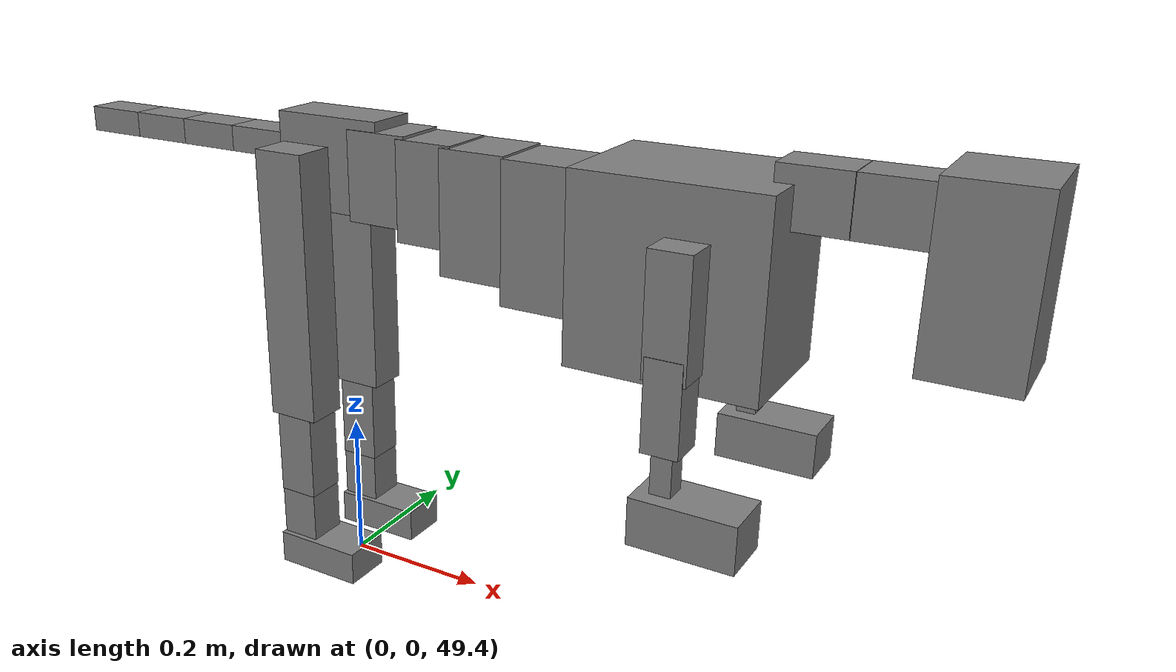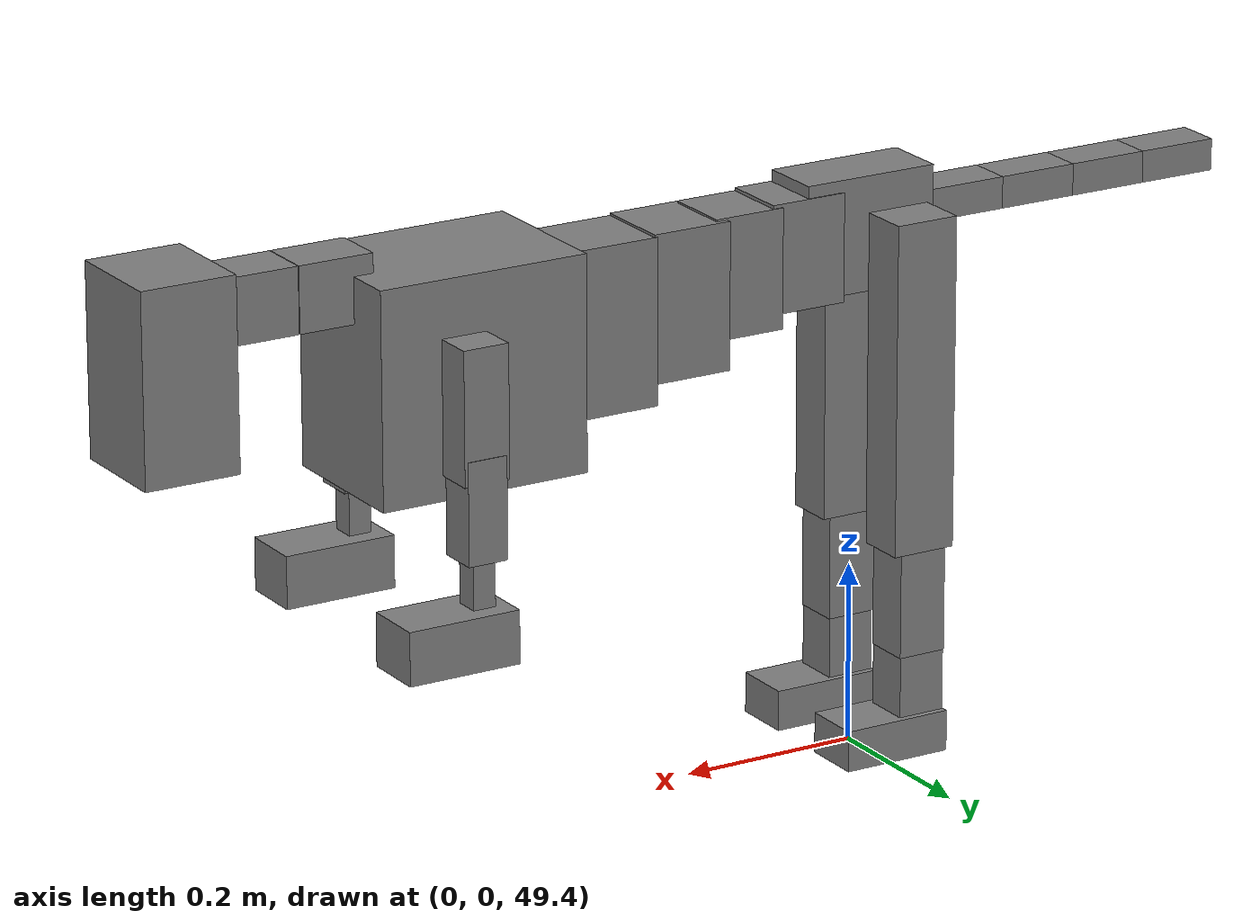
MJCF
<mujoco model="dog">

    <default>
        <joint armature="0.02" stiffness="1" damping="0.2" limited="true"/>
        <geom condim="3" friction="1 0.05 0.05" margin="0.01"/>
        <motor ctrllimited="true" ctrlrange="-1.0 1.0" forcelimited="true" gear="50"/>
    </default>

    <compiler inertiafromgeom="true" angle="radian"/>

    <option timestep="0.016" iterations="50" tolerance="1e-10" solver="Newton" jacobian="dense" cone="pyramidal"/>

    <size nconmax="20000" njmax="60000" nstack="5000000"/>
    <visual>
        <map force="0.1" zfar="30"/>
        <rgba haze="0.15 0.25 0.35 1"/>
        <quality shadowsize="2048"/>
        <global offwidth="800" offheight="800"/>
    </visual>

    <asset>
        <texture type="skybox" builtin="gradient" rgb1="0.3 0.5 0.7" rgb2="0 0 0" width="512" height="512"/>
        <texture name="texplane" type="2d" builtin="checker" rgb1=".2 .3 .4" rgb2=".1 0.15 0.2" width="512" height="512"
                 mark="cross" markrgb=".8 .8 .8"/>
        <texture name="texgeom" type="cube" builtin="flat" mark="cross" width="127" height="1278" rgb1="0.8 0.6 0.4"
                 rgb2="0.8 0.6 0.4" markrgb="1 1 1" random="0.01"/>

        <material name="matplane" reflectance="0.3" texture="texplane" texrepeat="1 1" texuniform="true"/>
        <material name="matgeom" texture="texgeom" texuniform="true" rgba="0.8 0.6 .4 1"/>
    </asset>

    <worldbody>
        <geom name="floor" pos="0 0 0" size="0 0 .25" type="plane" material="matplane" condim="3"/>

        <light directional="false" diffuse=".2 .2 .2" specular="0 0 0" pos="0 0 5" dir="0 0 -1" castshadow="false"/>
        <light mode="targetbodycom" target="torso" directional="false" diffuse=".8 .8 .8" specular="0.3 0.3 0.3"
               pos="0 0 4.0" dir="0 0 -1"/>

        <body name="root" pos="0 0 50">
            <freejoint name="root_1"/>
            <geom type="box" pos="0 0 -0.02" size="0.0774  0.0358  0.063" density="2030"/>

            <body name="spine1" pos="0.054 0 0">
                <joint name="spine1_y" axis="0 1 0" range="0 0.7" limited="true"/>
                <geom type="box" pos="0.02375 0 -0.03" size="0.04375  0.0375  0.05985" density="2030"/>

                <body name="spine2" pos="0.0612 0 0">
                    <joint name="spine2_y" axis="0 1 0" range="-0.15 0.15" limited="true"/>
                    <geom type="box" pos="0.03555  0  -0.04" size="0.04055  0.039  0.06615" density="2030"/>

                    <body name="spine3" pos="0.0730 0 0">
                        <joint name="spine3_y" axis="0 1 0" range="-0.15 0.15" limited="true"/>
                        <geom type="box" pos="0.03555  0  -0.057" size="0.04555  0.0445  0.081" density="2030"/>

                        <body name="spine4" pos="0.0780 0 0">
                            <joint name="spine4_y" axis="0 1 0" range="-0.15 0.15" limited="true"/>
                            <geom type="box" pos="0.05265  0  -0.07" size="0.05265  0.045  0.09135" density="2030"/>

                            <body name="torso" pos="0.1082 0 0">
                                <joint name="torso_y" axis="0 1 0" range="-0.15 0.15" limited="true"/>
                                <geom type="box" pos="0.11925  0  -0.085" size="0.11925  0.085  0.11745"
                                      density="2030"/>

                                <body name="neck1" pos="0.2160  0   0.0180">
                                    <joint name="neck1_y" axis="0 1 0" range="-1.2  -1" limited="true"/>
                                    <geom type="box" pos="0.0423  0  0" size="0.0423  0.03  0.036" density="2325"/>

                                    <body name="neck2" pos="0.0853  0  0">
                                        <joint name="neck2_y" axis="0 1 0" range="0.1  0" limited="true"/>
                                        <geom type="box" pos="0.0423  0  0" size="0.0423  0.03  0.036" density="2325"/>

                                        <body name="head" pos="0.0853  0  0">
                                            <joint name="head_y" axis="0 1 0" range="-0.3  -0.2" limited="true"/>
                                            <geom type="box" pos="0.0531  0  -0.055" size="0.0531  0.06  0.1044"
                                                  density="4030"/>

                                        </body>
                                    </body>
                                </body>

                                <body name="front_shoulder" pos="0.156  0   -0.0480">
                                    <joint name="front_shoulder_y" axis="0 1 0" range="-1 1.5" limited="true"/>
                                    <geom type="box" pos="0 0.13 -0.0458" size="0.0258  0.0221  0.0724" density="1158"/>
                                    <geom type="box" pos="0 -0.13 -0.0458" size="0.0258  0.0221  0.0724"
                                          density="1158"/>

                                    <body name="front_elbow" pos="0  0  -0.0915">
                                        <joint name="front_elbow_y" axis="0 1 0" range="-2 0" limited="true"/>
                                        <geom type="box" pos="0 0.13 -0.0558" size="0.0224  0.0229  0.0558"
                                              density="1081"/>
                                        <geom type="box" pos="0 -0.13 -0.0558" size="0.0224  0.0229  0.0558"
                                              density="1081"/>

                                        <body name="front_wrist" pos="0  0  -0.1116">
                                            <joint name="front_wrist_y" axis="0 1 0" range="-0.2 0" limited="true"/>
                                            <geom type="box" pos="0 0.13 -0.0330" size="0.0127  0.0141  0.0461"
                                                  density="1664"/>
                                            <geom type="box" pos="0 -0.13 -0.0330" size="0.0127  0.0141  0.0461"
                                                  density="1664"/>

                                            <body name="front_finger_end" pos="0  0  -0.0660">
                                                <joint name="front_finger_y" axis="0 1 0" range="-0.4 1"
                                                       limited="true"/>
                                                <geom type="box" pos="0.0347  0.13  -0.0142"
                                                      size="0.0636  0.0347  0.0292" density="1515"/>
                                                <geom type="box" pos="0.0347  -0.13  -0.0142"
                                                      size="0.0636  0.0347  0.0292" density="1515"/>

                                            </body>

                                        </body>
                                    </body>
                                </body>

                            </body>
                        </body>
                    </body>
                </body>
            </body>

            <body name="back_hip" pos="-0.03 0 -0.018">
                <joint name="back_hip_y" axis="0 1 0" range="-1.5 0.3" limited="true"/>
                <geom type="box" pos="0 0.07 -0.1601" size="0.0361  0.0283  0.1829" density="1154"/>
                <geom type="box" pos="0 -0.07 -0.1601" size="0.0361  0.0283  0.1829" density="1154"/>

                <body name="back_knee" pos="0  0  -0.3203">
                    <joint name="back_knee_y" axis="0 1 0" range="0 2.8" limited="true"/>
                    <geom type="box" pos="0 0.07 -0.0614" size="0.0274  0.0270  0.0770" density="1227"/>
                    <geom type="box" pos="0 -0.07 -0.0614" size="0.0274  0.0270  0.0770" density="1227"/>

                    <body name="back_ankle" pos="0  0  -0.1228">
                        <joint name="back_ankle_y" axis="0 1 0" range="-2.2 0" limited="true"/>
                        <geom type="box" pos="0 0.07 -0.0491" size="0.0266  0.0266  0.0603" density="1284"/>
                        <geom type="box" pos="0 -0.07 -0.0491" size="0.0266  0.0266  0.0603" density="1284"/>

                        <body name="back_toe_end" pos="0  0  -0.0981">
                            <joint name="back_toe_y" axis="0 1 0" range="-0.4 1" limited="true"/>
                            <geom type="box" pos="0.0337  0.07  -0.0076" size="0.0617  0.0337  0.0226" density="1515"/>
                            <geom type="box" pos="0.0337  -0.07  -0.0076" size="0.0617  0.0337  0.0226" density="1515"/>

                        </body>
                    </body>
                </body>
            </body>

            <body name="tail1" pos="-0.074 0 -0.006">
                <joint name="tail1_y" axis="0 1 0" range="-0.2 0.2" limited="true"/>
                <geom type="box" pos="-0.0536  0  0" size="0.045  0.025  0.0175" density="1587"/>

                <body name="tail2" pos="-0.09 0 0">
                    <joint name="tail2_y" axis="0 1 0" range="-0.2 0.2" limited="true"/>
                    <geom type="box" pos="-0.0536  0  0" size="0.045  0.025  0.0175" density="1587"/>

                    <body name="tail3" pos="-0.09 0 0">
                        <joint name="tail3_y" axis="0 1 0" range="-0.2 0.2" limited="true"/>
                        <geom type="box" pos="-0.0536  0  0" size="0.045  0.025  0.0175" density="1587"/>

                        <body name="tail4" pos="-0.09 0 0">
                            <joint name="tail4_y" axis="0 1 0" range="-0.2 0.2" limited="true"/>
                            <geom type="box" pos="-0.0536  0  0" size="0.045  0.025  0.0175" density="1587"/>

                        </body>
                    </body>
                </body>
            </body>
        </body>
    </worldbody>

    <actuator>
        <motor joint="spine1_y" forcerange="-150 150     "/>
        <motor joint="spine2_y" forcerange="-150 150     "/>
        <motor joint="spine3_y" forcerange="-150 150     "/>
        <motor joint="spine4_y" forcerange="-150 150     "/>
        <motor joint="torso_y" forcerange="-150 150     "/>
        <motor joint="neck1_y" forcerange="-100 100       "/>
        <motor joint="neck2_y" forcerange="-100 100       "/>
        <motor joint="head_y" forcerange="-150 150       "/>
        <motor joint="front_shoulder_y" forcerange="-113.45 133.76"/>
        <motor joint="front_elbow_y" forcerange="-135.50 130.90"/>
        <motor joint="front_wrist_y" forcerange="-60.59 51.90"/>
        <motor joint="front_finger_y" forcerange="-98.89 46.09"/>
        <motor joint="back_hip_y" forcerange="-301.52 276.23"/>
        <motor joint="back_knee_y" forcerange="-299.67 293.61"/>
        <motor joint="back_angle_y" forcerange="-178.11 147.97"/>
        <motor joint="back_toe_y" forcerange="-89.33 99.93"/>
        <motor joint="tail1_y" forcerange="-50 50     "/>
        <motor joint="tail2_y" forcerange="-50 50     "/>
        <motor joint="tail3_y" forcerange="-50 50     "/>
        <motor joint="tail4_y" forcerange="-50 50     "/>
    </actuator>
</mujoco>
